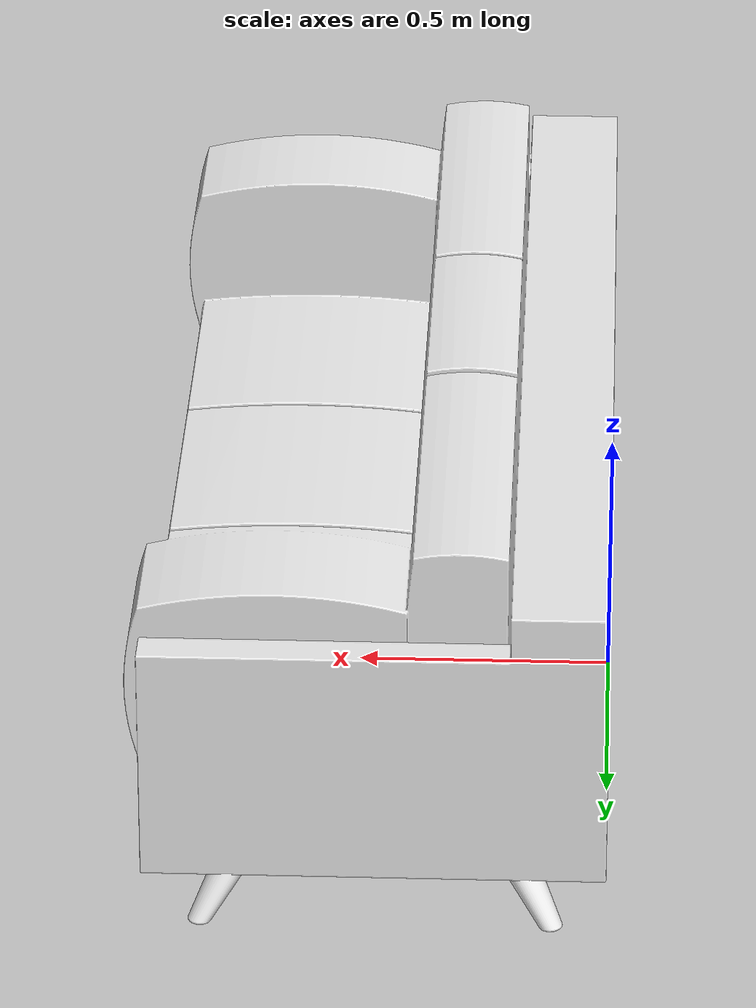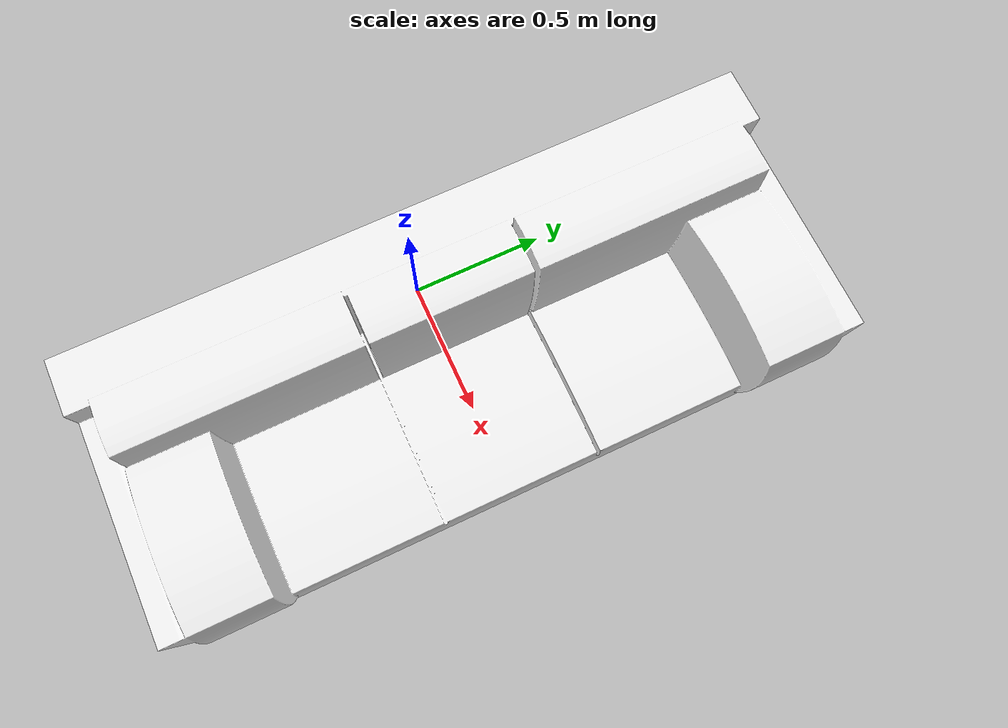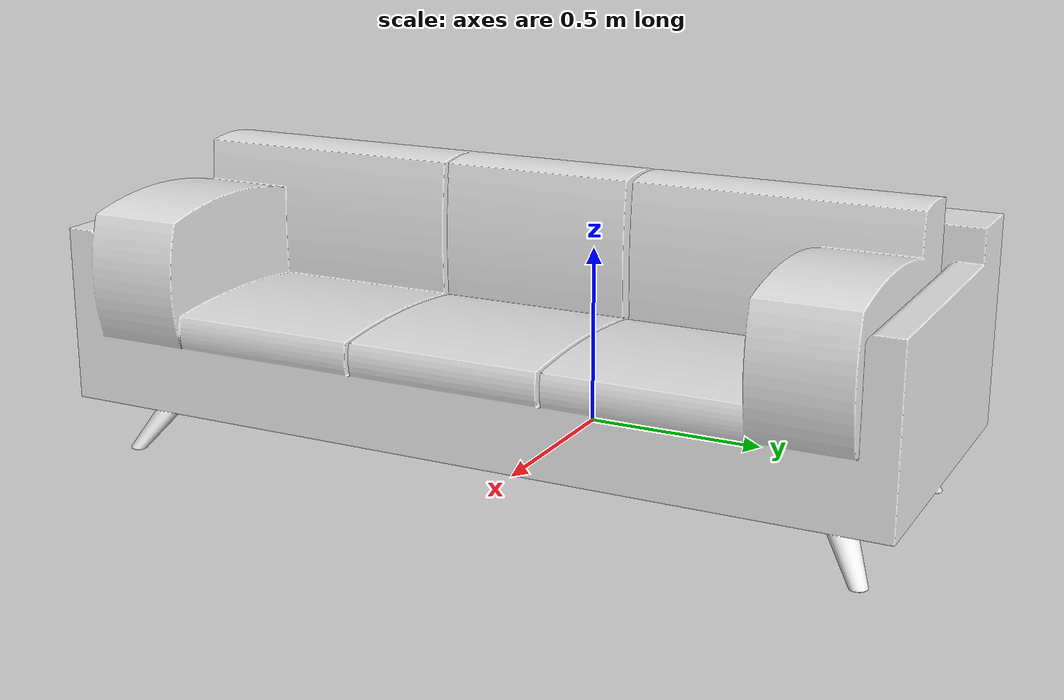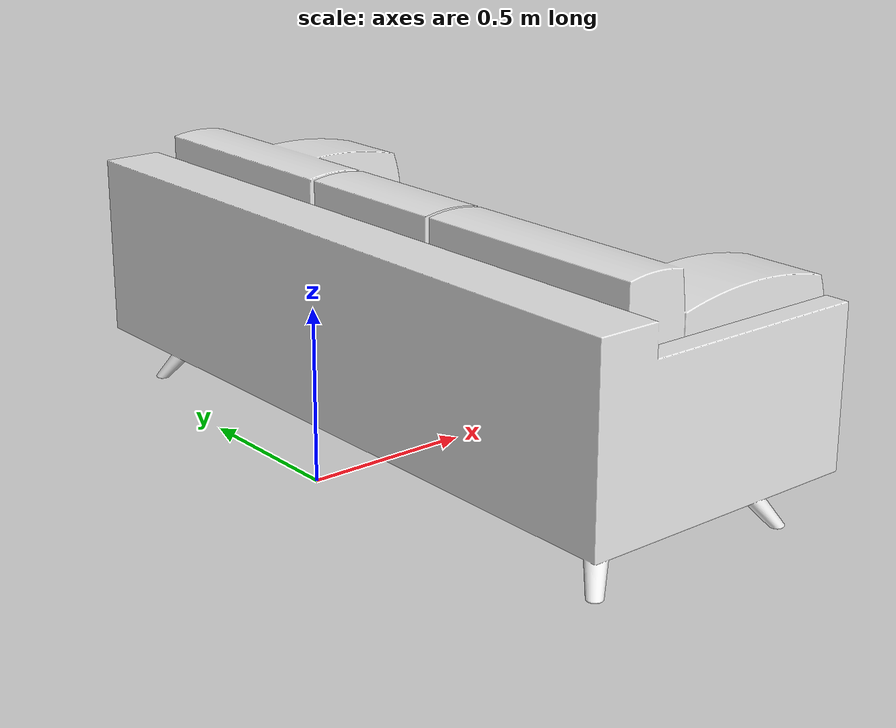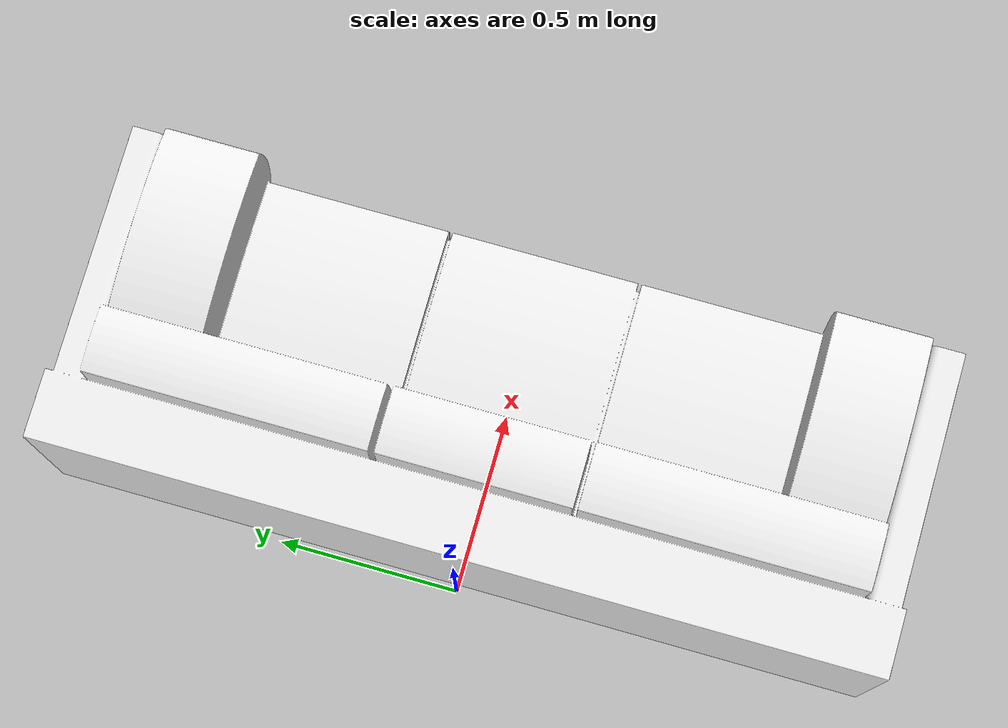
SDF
<?xml version='1.0'?>
<sdf version="1.5">
  <model name="sofa"> <!-- Very important to change-->
    <static>true</static>
    <pose>0 0 0 0 0 0</pose> <!-- Translation: X Y Z and Rotation: Roll Pitch Yaw (In Radian)-->
    <link name="body">

      <collision name="collision"> <!-- You can use mesh like below -->
        <geometry>
          <mesh>
             <uri>/home/sorox23/robotic_ws/master_thesis_ws/src/property_based_tester/environment/models/sofa/meshes/sofa.stl</uri>
             <scale>0.001 0.001 0.001</scale>
          </mesh>
        </geometry>
      </collision>

      <visual name="visual">
        <geometry>
          <mesh>
             <uri>/home/sorox23/robotic_ws/master_thesis_ws/src/property_based_tester/environment/models/sofa/meshes/sofa.stl</uri>
             <scale>0.001 0.001 0.001</scale>
          </mesh>
        </geometry>

        <material>
          <script>
             <uri>/home/sorox23/robotic_ws/master_thesis_ws/src/property_based_tester/environment/models/sofa/materials/scripts</uri>
             <uri>/home/sorox23/robotic_ws/master_thesis_ws/src/property_based_tester/environment/models/sofa/materials/textures</uri>
             <name>PR2/White</name>
          </script>
        </material>
      </visual>
    </link>
  </model>
</sdf>
